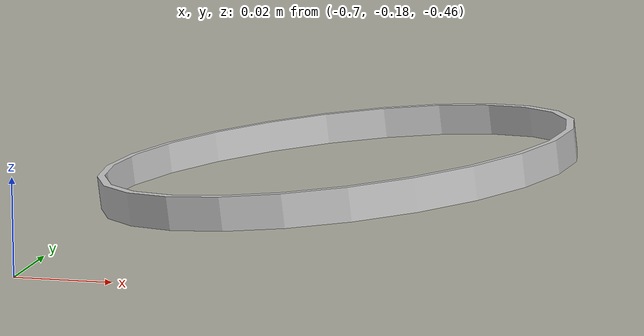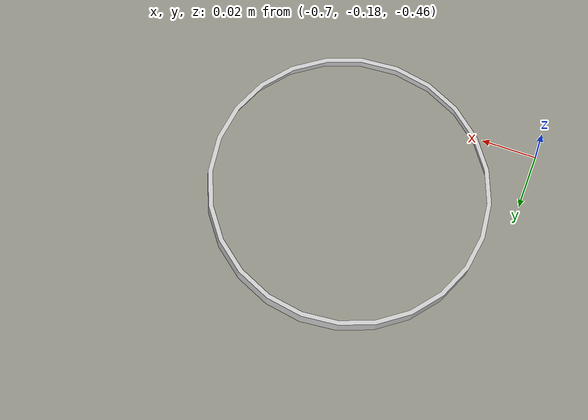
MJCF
<mujoco model="original-39">
  <default>
    <default class="visual">
      <geom group="2" type="mesh" contype="0" conaffinity="0"/>
    </default>
    <default class="collision">
      <geom group="3" type="mesh"/>
    </default>
  </default>
  <asset>
    <material name="material_0_0" specular="0.06666666666666667" shininess="0.03" rgba="0.8 0.8 0.8 1"/>
    <mesh file="original-39.obj"/>
  </asset>
  <worldbody>
    <body name="original-39">
      <geom material="material_0_0" mesh="original-39" class="visual"/>
      <geom mesh="original-39" class="collision"/>
    </body>
  </worldbody>
</mujoco>
